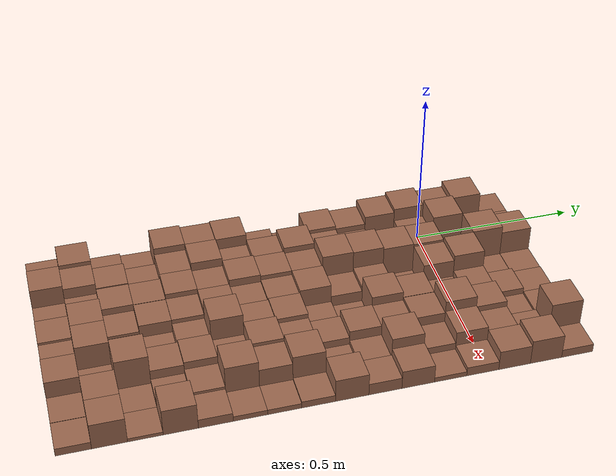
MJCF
<mujoco model="random_terrain">
    <option timestep="0.001" gravity="0 0 -9.81"/>
    <worldbody>
	<body name="terrain" pos="0.08 -0.4 -0.15">
        <geom name="cube_0_0" type="box" size="0.05 0.05 0.0225" pos="-0.35 -0.75 0.0225" rgba="0.6 0.4 0.3 1"/>
        <geom name="cube_0_1" type="box" size="0.05 0.05 0.0475" pos="-0.35 -0.65 0.0475" rgba="0.6 0.4 0.3 1"/>
        <geom name="cube_0_2" type="box" size="0.05 0.05 0.012" pos="-0.35 -0.55 0.012" rgba="0.6 0.4 0.3 1"/>
        <geom name="cube_0_3" type="box" size="0.05 0.05 0.0075" pos="-0.35 -0.45 0.0075" rgba="0.6 0.4 0.3 1"/>
        <geom name="cube_0_4" type="box" size="0.05 0.05 0.05" pos="-0.35 -0.35 0.05" rgba="0.6 0.4 0.3 1"/>
        <geom name="cube_0_5" type="box" size="0.05 0.05 0.0455" pos="-0.35 -0.25 0.0455" rgba="0.6 0.4 0.3 1"/>
        <geom name="cube_0_6" type="box" size="0.05 0.05 0.048" pos="-0.35 -0.15 0.048" rgba="0.6 0.4 0.3 1"/>
        <geom name="cube_0_7" type="box" size="0.05 0.05 0.0125" pos="-0.35 -0.05 0.0125" rgba="0.6 0.4 0.3 1"/>
        <geom name="cube_0_8" type="box" size="0.05 0.05 0.002" pos="-0.35 0.05 0.002" rgba="0.6 0.4 0.3 1"/>
        <geom name="cube_0_9" type="box" size="0.05 0.05 0.035" pos="-0.35 0.15 0.035" rgba="0.6 0.4 0.3 1"/>
        <geom name="cube_0_10" type="box" size="0.05 0.05 0.0295" pos="-0.35 0.25 0.0295" rgba="0.6 0.4 0.3 1"/>
        <geom name="cube_0_11" type="box" size="0.05 0.05 0.043" pos="-0.35 0.35 0.043" rgba="0.6 0.4 0.3 1"/>
        <geom name="cube_0_12" type="box" size="0.05 0.05 0.0495" pos="-0.35 0.45 0.0495" rgba="0.6 0.4 0.3 1"/>
        <geom name="cube_0_13" type="box" size="0.05 0.05 0.042" pos="-0.35 0.55 0.042" rgba="0.6 0.4 0.3 1"/>
        <geom name="cube_0_14" type="box" size="0.05 0.05 0.053" pos="-0.35 0.65 0.053" rgba="0.6 0.4 0.3 1"/>
        <geom name="cube_0_15" type="box" size="0.05 0.05 0.009" pos="-0.35 0.75 0.009" rgba="0.6 0.4 0.3 1"/>
        <geom name="cube_1_0" type="box" size="0.05 0.05 0.0475" pos="-0.25 -0.75 0.0475" rgba="0.6 0.4 0.3 1"/>
        <geom name="cube_1_1" type="box" size="0.05 0.05 0.0405" pos="-0.25 -0.65 0.0405" rgba="0.6 0.4 0.3 1"/>
        <geom name="cube_1_2" type="box" size="0.05 0.05 0.0315" pos="-0.25 -0.55 0.0315" rgba="0.6 0.4 0.3 1"/>
        <geom name="cube_1_3" type="box" size="0.05 0.05 0.0195" pos="-0.25 -0.45 0.0195" rgba="0.6 0.4 0.3 1"/>
        <geom name="cube_1_4" type="box" size="0.05 0.05 0.0385" pos="-0.25 -0.35 0.0385" rgba="0.6 0.4 0.3 1"/>
        <geom name="cube_1_5" type="box" size="0.05 0.05 0.0495" pos="-0.25 -0.25 0.0495" rgba="0.6 0.4 0.3 1"/>
        <geom name="cube_1_6" type="box" size="0.05 0.05 0.028" pos="-0.25 -0.15 0.028" rgba="0.6 0.4 0.3 1"/>
        <geom name="cube_1_7" type="box" size="0.05 0.05 0.0375" pos="-0.25 -0.05 0.0375" rgba="0.6 0.4 0.3 1"/>
        <geom name="cube_1_8" type="box" size="0.05 0.05 0.0485" pos="-0.25 0.05 0.0485" rgba="0.6 0.4 0.3 1"/>
        <geom name="cube_1_9" type="box" size="0.05 0.05 0.0285" pos="-0.25 0.15 0.0285" rgba="0.6 0.4 0.3 1"/>
        <geom name="cube_1_10" type="box" size="0.05 0.05 0.0195" pos="-0.25 0.25 0.0195" rgba="0.6 0.4 0.3 1"/>
        <geom name="cube_1_11" type="box" size="0.05 0.05 0.0105" pos="-0.25 0.35 0.0105" rgba="0.6 0.4 0.3 1"/>
        <geom name="cube_1_12" type="box" size="0.05 0.05 0.0265" pos="-0.25 0.45 0.0265" rgba="0.6 0.4 0.3 1"/>
        <geom name="cube_1_13" type="box" size="0.05 0.05 0.059" pos="-0.25 0.55 0.059" rgba="0.6 0.4 0.3 1"/>
        <geom name="cube_1_14" type="box" size="0.05 0.05 0.0155" pos="-0.25 0.65 0.0155" rgba="0.6 0.4 0.3 1"/>
        <geom name="cube_1_15" type="box" size="0.05 0.05 0.009" pos="-0.25 0.75 0.009" rgba="0.6 0.4 0.3 1"/>
        <geom name="cube_2_0" type="box" size="0.05 0.05 0.0135" pos="-0.15 -0.75 0.0135" rgba="0.6 0.4 0.3 1"/>
        <geom name="cube_2_1" type="box" size="0.05 0.05 0.0215" pos="-0.15 -0.65 0.0215" rgba="0.6 0.4 0.3 1"/>
        <geom name="cube_2_2" type="box" size="0.05 0.05 0.03" pos="-0.15 -0.55 0.03" rgba="0.6 0.4 0.3 1"/>
        <geom name="cube_2_3" type="box" size="0.05 0.05 0.0295" pos="-0.15 -0.45 0.0295" rgba="0.6 0.4 0.3 1"/>
        <geom name="cube_2_4" type="box" size="0.05 0.05 0.0385" pos="-0.15 -0.35 0.0385" rgba="0.6 0.4 0.3 1"/>
        <geom name="cube_2_5" type="box" size="0.05 0.05 0.0345" pos="-0.15 -0.25 0.0345" rgba="0.6 0.4 0.3 1"/>
        <geom name="cube_2_6" type="box" size="0.05 0.05 0.045" pos="-0.15 -0.15 0.045" rgba="0.6 0.4 0.3 1"/>
        <geom name="cube_2_7" type="box" size="0.05 0.05 0.0425" pos="-0.15 -0.05 0.0425" rgba="0.6 0.4 0.3 1"/>
        <geom name="cube_2_8" type="box" size="0.05 0.05 0.0385" pos="-0.15 0.05 0.0385" rgba="0.6 0.4 0.3 1"/>
        <geom name="cube_2_9" type="box" size="0.05 0.05 0.0585" pos="-0.15 0.15 0.0585" rgba="0.6 0.4 0.3 1"/>
        <geom name="cube_2_10" type="box" size="0.05 0.05 0.0575" pos="-0.15 0.25 0.0575" rgba="0.6 0.4 0.3 1"/>
        <geom name="cube_2_11" type="box" size="0.05 0.05 0.054" pos="-0.15 0.35 0.054" rgba="0.6 0.4 0.3 1"/>
        <geom name="cube_2_12" type="box" size="0.05 0.05 0.053" pos="-0.15 0.45 0.053" rgba="0.6 0.4 0.3 1"/>
        <geom name="cube_2_13" type="box" size="0.05 0.05 0.0105" pos="-0.15 0.55 0.0105" rgba="0.6 0.4 0.3 1"/>
        <geom name="cube_2_14" type="box" size="0.05 0.05 0.058" pos="-0.15 0.65 0.058" rgba="0.6 0.4 0.3 1"/>
        <geom name="cube_2_15" type="box" size="0.05 0.05 0.046" pos="-0.15 0.75 0.046" rgba="0.6 0.4 0.3 1"/>
        <geom name="cube_3_0" type="box" size="0.05 0.05 0.03" pos="-0.05 -0.75 0.03" rgba="0.6 0.4 0.3 1"/>
        <geom name="cube_3_1" type="box" size="0.05 0.05 0.0535" pos="-0.05 -0.65 0.0535" rgba="0.6 0.4 0.3 1"/>
        <geom name="cube_3_2" type="box" size="0.05 0.05 0.018" pos="-0.05 -0.55 0.018" rgba="0.6 0.4 0.3 1"/>
        <geom name="cube_3_3" type="box" size="0.05 0.05 0.029" pos="-0.05 -0.45 0.029" rgba="0.6 0.4 0.3 1"/>
        <geom name="cube_3_4" type="box" size="0.05 0.05 0.0295" pos="-0.05 -0.35 0.0295" rgba="0.6 0.4 0.3 1"/>
        <geom name="cube_3_5" type="box" size="0.05 0.05 0.0375" pos="-0.05 -0.25 0.0375" rgba="0.6 0.4 0.3 1"/>
        <geom name="cube_3_6" type="box" size="0.05 0.05 0.0315" pos="-0.05 -0.15 0.0315" rgba="0.6 0.4 0.3 1"/>
        <geom name="cube_3_7" type="box" size="0.05 0.05 0.035" pos="-0.05 -0.05 0.035" rgba="0.6 0.4 0.3 1"/>
        <geom name="cube_3_8" type="box" size="0.05 0.05 0.0425" pos="-0.05 0.05 0.0425" rgba="0.6 0.4 0.3 1"/>
        <geom name="cube_3_9" type="box" size="0.05 0.05 0.02" pos="-0.05 0.15 0.02" rgba="0.6 0.4 0.3 1"/>
        <geom name="cube_3_10" type="box" size="0.05 0.05 0.0265" pos="-0.05 0.25 0.0265" rgba="0.6 0.4 0.3 1"/>
        <geom name="cube_3_11" type="box" size="0.05 0.05 0.0005" pos="-0.05 0.35 0.0005" rgba="0.6 0.4 0.3 1"/>
        <geom name="cube_3_12" type="box" size="0.05 0.05 0.049" pos="-0.05 0.45 0.049" rgba="0.6 0.4 0.3 1"/>
        <geom name="cube_3_13" type="box" size="0.05 0.05 0.058" pos="-0.05 0.55 0.058" rgba="0.6 0.4 0.3 1"/>
        <geom name="cube_3_14" type="box" size="0.05 0.05 0.003" pos="-0.05 0.65 0.003" rgba="0.6 0.4 0.3 1"/>
        <geom name="cube_3_15" type="box" size="0.05 0.05 0.0035" pos="-0.05 0.75 0.0035" rgba="0.6 0.4 0.3 1"/>
        <geom name="cube_4_0" type="box" size="0.05 0.05 0.026" pos="0.05 -0.75 0.026" rgba="0.6 0.4 0.3 1"/>
        <geom name="cube_4_1" type="box" size="0.05 0.05 0.0535" pos="0.05 -0.65 0.0535" rgba="0.6 0.4 0.3 1"/>
        <geom name="cube_4_2" type="box" size="0.05 0.05 0.0135" pos="0.05 -0.55 0.0135" rgba="0.6 0.4 0.3 1"/>
        <geom name="cube_4_3" type="box" size="0.05 0.05 0.006" pos="0.05 -0.45 0.006" rgba="0.6 0.4 0.3 1"/>
        <geom name="cube_4_4" type="box" size="0.05 0.05 0.022" pos="0.05 -0.35 0.022" rgba="0.6 0.4 0.3 1"/>
        <geom name="cube_4_5" type="box" size="0.05 0.05 0.06" pos="0.05 -0.25 0.06" rgba="0.6 0.4 0.3 1"/>
        <geom name="cube_4_6" type="box" size="0.05 0.05 0.0365" pos="0.05 -0.15 0.0365" rgba="0.6 0.4 0.3 1"/>
        <geom name="cube_4_7" type="box" size="0.05 0.05 0.039" pos="0.05 -0.05 0.039" rgba="0.6 0.4 0.3 1"/>
        <geom name="cube_4_8" type="box" size="0.05 0.05 0.01" pos="0.05 0.05 0.01" rgba="0.6 0.4 0.3 1"/>
        <geom name="cube_4_9" type="box" size="0.05 0.05 0.0005" pos="0.05 0.15 0.0005" rgba="0.6 0.4 0.3 1"/>
        <geom name="cube_4_10" type="box" size="0.05 0.05 0.048" pos="0.05 0.25 0.048" rgba="0.6 0.4 0.3 1"/>
        <geom name="cube_4_11" type="box" size="0.05 0.05 0.038" pos="0.05 0.35 0.038" rgba="0.6 0.4 0.3 1"/>
        <geom name="cube_4_12" type="box" size="0.05 0.05 0.0175" pos="0.05 0.45 0.0175" rgba="0.6 0.4 0.3 1"/>
        <geom name="cube_4_13" type="box" size="0.05 0.05 0.0285" pos="0.05 0.55 0.0285" rgba="0.6 0.4 0.3 1"/>
        <geom name="cube_4_14" type="box" size="0.05 0.05 0.012" pos="0.05 0.65 0.012" rgba="0.6 0.4 0.3 1"/>
        <geom name="cube_4_15" type="box" size="0.05 0.05 0.005" pos="0.05 0.75 0.005" rgba="0.6 0.4 0.3 1"/>
        <geom name="cube_5_0" type="box" size="0.05 0.05 0.044" pos="0.15 -0.75 0.044" rgba="0.6 0.4 0.3 1"/>
        <geom name="cube_5_1" type="box" size="0.05 0.05 0.01" pos="0.15 -0.65 0.01" rgba="0.6 0.4 0.3 1"/>
        <geom name="cube_5_2" type="box" size="0.05 0.05 0.0585" pos="0.15 -0.55 0.0585" rgba="0.6 0.4 0.3 1"/>
        <geom name="cube_5_3" type="box" size="0.05 0.05 0.0295" pos="0.15 -0.45 0.0295" rgba="0.6 0.4 0.3 1"/>
        <geom name="cube_5_4" type="box" size="0.05 0.05 0.034" pos="0.15 -0.35 0.034" rgba="0.6 0.4 0.3 1"/>
        <geom name="cube_5_5" type="box" size="0.05 0.05 0.021" pos="0.15 -0.25 0.021" rgba="0.6 0.4 0.3 1"/>
        <geom name="cube_5_6" type="box" size="0.05 0.05 0.046" pos="0.15 -0.15 0.046" rgba="0.6 0.4 0.3 1"/>
        <geom name="cube_5_7" type="box" size="0.05 0.05 0.031" pos="0.15 -0.05 0.031" rgba="0.6 0.4 0.3 1"/>
        <geom name="cube_5_8" type="box" size="0.05 0.05 0.023" pos="0.15 0.05 0.023" rgba="0.6 0.4 0.3 1"/>
        <geom name="cube_5_9" type="box" size="0.05 0.05 0.0345" pos="0.15 0.15 0.0345" rgba="0.6 0.4 0.3 1"/>
        <geom name="cube_5_10" type="box" size="0.05 0.05 0.0325" pos="0.15 0.25 0.0325" rgba="0.6 0.4 0.3 1"/>
        <geom name="cube_5_11" type="box" size="0.05 0.05 0.0375" pos="0.15 0.35 0.0375" rgba="0.6 0.4 0.3 1"/>
        <geom name="cube_5_12" type="box" size="0.05 0.05 0.0585" pos="0.15 0.45 0.0585" rgba="0.6 0.4 0.3 1"/>
        <geom name="cube_5_13" type="box" size="0.05 0.05 0.038" pos="0.15 0.55 0.038" rgba="0.6 0.4 0.3 1"/>
        <geom name="cube_5_14" type="box" size="0.05 0.05 0.001" pos="0.15 0.65 0.001" rgba="0.6 0.4 0.3 1"/>
        <geom name="cube_5_15" type="box" size="0.05 0.05 0.005" pos="0.15 0.75 0.005" rgba="0.6 0.4 0.3 1"/>
        <geom name="cube_6_0" type="box" size="0.05 0.05 0.014" pos="0.25 -0.75 0.014" rgba="0.6 0.4 0.3 1"/>
        <geom name="cube_6_1" type="box" size="0.05 0.05 0.0455" pos="0.25 -0.65 0.0455" rgba="0.6 0.4 0.3 1"/>
        <geom name="cube_6_2" type="box" size="0.05 0.05 0.0055" pos="0.25 -0.55 0.0055" rgba="0.6 0.4 0.3 1"/>
        <geom name="cube_6_3" type="box" size="0.05 0.05 0.013" pos="0.25 -0.45 0.013" rgba="0.6 0.4 0.3 1"/>
        <geom name="cube_6_4" type="box" size="0.05 0.05 0.0205" pos="0.25 -0.35 0.0205" rgba="0.6 0.4 0.3 1"/>
        <geom name="cube_6_5" type="box" size="0.05 0.05 0.056" pos="0.25 -0.25 0.056" rgba="0.6 0.4 0.3 1"/>
        <geom name="cube_6_6" type="box" size="0.05 0.05 0.04" pos="0.25 -0.15 0.04" rgba="0.6 0.4 0.3 1"/>
        <geom name="cube_6_7" type="box" size="0.05 0.05 0.0525" pos="0.25 -0.05 0.0525" rgba="0.6 0.4 0.3 1"/>
        <geom name="cube_6_8" type="box" size="0.05 0.05 0.01" pos="0.25 0.05 0.01" rgba="0.6 0.4 0.3 1"/>
        <geom name="cube_6_9" type="box" size="0.05 0.05 0.017" pos="0.25 0.15 0.017" rgba="0.6 0.4 0.3 1"/>
        <geom name="cube_6_10" type="box" size="0.05 0.05 0.0515" pos="0.25 0.25 0.0515" rgba="0.6 0.4 0.3 1"/>
        <geom name="cube_6_11" type="box" size="0.05 0.05 0.0205" pos="0.25 0.35 0.0205" rgba="0.6 0.4 0.3 1"/>
        <geom name="cube_6_12" type="box" size="0.05 0.05 0.0405" pos="0.25 0.45 0.0405" rgba="0.6 0.4 0.3 1"/>
        <geom name="cube_6_13" type="box" size="0.05 0.05 0.028" pos="0.25 0.55 0.028" rgba="0.6 0.4 0.3 1"/>
        <geom name="cube_6_14" type="box" size="0.05 0.05 0.01" pos="0.25 0.65 0.01" rgba="0.6 0.4 0.3 1"/>
        <geom name="cube_6_15" type="box" size="0.05 0.05 0.06" pos="0.25 0.75 0.06" rgba="0.6 0.4 0.3 1"/>
        <geom name="cube_7_0" type="box" size="0.05 0.05 0.0135" pos="0.35 -0.75 0.0135" rgba="0.6 0.4 0.3 1"/>
        <geom name="cube_7_1" type="box" size="0.05 0.05 0.046" pos="0.35 -0.65 0.046" rgba="0.6 0.4 0.3 1"/>
        <geom name="cube_7_2" type="box" size="0.05 0.05 0.006" pos="0.35 -0.55 0.006" rgba="0.6 0.4 0.3 1"/>
        <geom name="cube_7_3" type="box" size="0.05 0.05 0.0465" pos="0.35 -0.45 0.0465" rgba="0.6 0.4 0.3 1"/>
        <geom name="cube_7_4" type="box" size="0.05 0.05 0.016" pos="0.35 -0.35 0.016" rgba="0.6 0.4 0.3 1"/>
        <geom name="cube_7_5" type="box" size="0.05 0.05 0.009" pos="0.35 -0.25 0.009" rgba="0.6 0.4 0.3 1"/>
        <geom name="cube_7_6" type="box" size="0.05 0.05 0.009" pos="0.35 -0.15 0.009" rgba="0.6 0.4 0.3 1"/>
        <geom name="cube_7_7" type="box" size="0.05 0.05 0.012" pos="0.35 -0.05 0.012" rgba="0.6 0.4 0.3 1"/>
        <geom name="cube_7_8" type="box" size="0.05 0.05 0.0405" pos="0.35 0.05 0.0405" rgba="0.6 0.4 0.3 1"/>
        <geom name="cube_7_9" type="box" size="0.05 0.05 0.021" pos="0.35 0.15 0.021" rgba="0.6 0.4 0.3 1"/>
        <geom name="cube_7_10" type="box" size="0.05 0.05 0.033" pos="0.35 0.25 0.033" rgba="0.6 0.4 0.3 1"/>
        <geom name="cube_7_11" type="box" size="0.05 0.05 0.0085" pos="0.35 0.35 0.0085" rgba="0.6 0.4 0.3 1"/>
        <geom name="cube_7_12" type="box" size="0.05 0.05 0.016" pos="0.35 0.45 0.016" rgba="0.6 0.4 0.3 1"/>
        <geom name="cube_7_13" type="box" size="0.05 0.05 0.035" pos="0.35 0.55 0.035" rgba="0.6 0.4 0.3 1"/>
        <geom name="cube_7_14" type="box" size="0.05 0.05 0.0435" pos="0.35 0.65 0.0435" rgba="0.6 0.4 0.3 1"/>
        <geom name="cube_7_15" type="box" size="0.05 0.05 0.0145" pos="0.35 0.75 0.0145" rgba="0.6 0.4 0.3 1"/>
    </body>
    </worldbody>
</mujoco>
